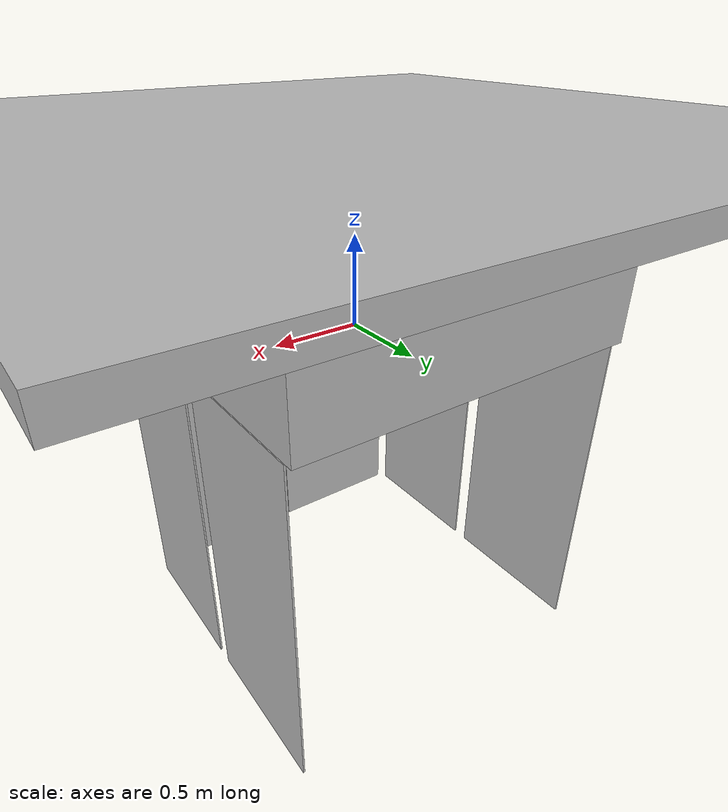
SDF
<sdf version='1.6'>
  <world name='granite'>
    <physics name='default_physics' default='0' type='ode'>
      <max_step_size>0.016</max_step_size>
      <real_time_factor>1</real_time_factor>
      <real_time_update_rate>62.5</real_time_update_rate>
    </physics>
    <scene>
      <ambient>0.3 0.3 0.3 1</ambient>
      <background>0 0 0 1</background>
      <fog>
        <density>0</density>
      </fog>
      <grid>0</grid>
      <shadows>0</shadows>
    </scene>
    <gui fullscreen='0'>
      <camera name='user_camera'>
        <pose frame=''>0 4.0 -1.0 3.14 0 -1.57</pose>
        <view_controller>orbit</view_controller>
        <projection_type>perspective</projection_type>
      </camera>
    </gui>
    <gravity>0 0 9.80665</gravity>
    <magnetic_field>0 0 0</magnetic_field>
    <atmosphere type='adiabatic'/>
    <spherical_coordinates>
      <surface_model>EARTH_WGS84</surface_model>
      <latitude_deg>0</latitude_deg>
      <longitude_deg>0</longitude_deg>
      <elevation>0</elevation>
      <heading_deg>0</heading_deg>
    </spherical_coordinates>
    <light name='user_point_light_0' type='point'>
      <pose frame=''>0 1 -1.5 0 -0 0</pose>
      <diffuse>0.5 0.5 0.5 1</diffuse>
      <specular>0.1 0.1 0.1 1</specular>
      <attenuation>
        <range>20</range>
        <constant>0.5</constant>
        <linear>0.05</linear>
        <quadratic>0.001</quadratic>
      </attenuation>
      <cast_shadows>0</cast_shadows>
      <direction>0 0 -1</direction>
    </light>
    <model name='granite_model'>
      <static>1</static>
      <pose frame=''>0 0 0 0 0 0</pose>
      <link name='body'>
        <inertial>
          <mass>0.1</mass>
          <inertia>
            <ixx>1</ixx>
            <ixy>0</ixy>
            <ixz>0</ixz>
            <iyy>1</iyy>
            <iyz>0</iyz>
            <izz>1</izz>
          </inertia>
        </inertial>
        <visual name='visual_granite_bottom'>
          <pose>0 0 0.75 0 0 0</pose>
          <geometry>
            <box>
              <size>1.5 1.5 0.5</size>
            </box>
          </geometry>
          <material>
            <script>
              <uri>file://media/materials/scripts/astrobee.material</uri>
              <name>Astrobee/GraniteTable</name>
            </script>
          </material>
        </visual>
        <collision name='collision_granite_bottom'>
          <pose>0 0 0.75 0 0 0</pose>
          <geometry>
            <box>
              <size>1.5 1.5 0.5</size>
            </box>
          </geometry>
        </collision>
        <visual name='visual_granite_top'>
          <pose>0 0 0.25 0 0 0</pose>
          <geometry>
            <box>
              <size>2.0 2.0 0.5</size>
            </box>
          </geometry>
          <material>
            <script>
              <uri>file://media/materials/scripts/astrobee.material</uri>
              <name>Astrobee/GraniteTable</name>
            </script>
          </material>
        </visual>
        <collision name='collision_granite_top'>
          <pose>0 0 0.25 0 0 0</pose>
          <geometry>
            <box>
              <size>2.0 2.0 0.5</size>
            </box>
          </geometry>
        </collision>
        <visual name='visual_floor'>
          <pose>0 0 1.0 0 0 0</pose>
          <geometry>
            <box>
              <size>20.0 20.0 0.1</size>
            </box>
          </geometry>
          <material>
            <script>
              <uri>file://media/materials/scripts/astrobee.material</uri>
              <name>Astrobee/GraniteFloor</name>
            </script>
          </material>
        </visual>
        <collision name='collision_floor'>
          <pose>0 0 1.0 0 0 0</pose>
          <geometry>
            <box>
              <size>20.0 20.0 0.1</size>
            </box>
          </geometry>
        </collision>
        <visual name='visual_wallx_pn'>
          <pose>1.0 -0.5 -1.0 0 0 0</pose>
          <geometry>
            <box>
              <size>0.01 0.9 2.0</size>
            </box>
          </geometry>
          <material>
            <script>
              <uri>file://media/materials/scripts/astrobee.material</uri>
              <name>Astrobee/GraniteWall1</name>
            </script>
          </material>
        </visual>
        <collision name='collision_wallx_pn'>
          <pose>1.0 -0.5 -1.0 0 0 0</pose>
          <geometry>
            <box>
              <size>0.01 0.9 2.0</size>
            </box>
          </geometry>
        </collision>
        <visual name='visual_wallx_pp'>
          <pose>1.0 0.5 -1.0 0 0 0</pose>
          <geometry>
            <box>
              <size>0.01 0.9 2.0</size>
            </box>
          </geometry>
          <material>
            <script>
              <uri>file://media/materials/scripts/astrobee.material</uri>
              <name>Astrobee/GraniteWall2</name>
            </script>
          </material>
        </visual>
        <collision name='collision_wallx_pp'>
          <pose>1.0 0.5 -1.0 0 0 0</pose>
          <geometry>
            <box>
              <size>0.01 0.9 2.0</size>
            </box>
          </geometry>
        </collision>
        <visual name='visual_wallx_nn'>
          <pose>-1.0 -0.5 -1.0 0 0 0</pose>
          <geometry>
            <box>
              <size>0.01 0.9 2.0</size>
            </box>
          </geometry>
          <material>
            <script>
              <uri>file://media/materials/scripts/astrobee.material</uri>
              <name>Astrobee/GraniteWall3</name>
            </script>
          </material>
        </visual>
        <collision name='collision_wallx_nn'>
          <pose>-1.0 -0.5 -1.0 0 0 0</pose>
          <geometry>
            <box>
              <size>0.01 0.9 2.0</size>
            </box>
          </geometry>
        </collision>
        <visual name='visual_wallx_np'>
          <pose>-1.0 0.5 -1.0 0 0 0</pose>
          <geometry>
            <box>
              <size>0.01 0.9 2.0</size>
            </box>
          </geometry>
          <material>
            <script>
              <uri>file://media/materials/scripts/astrobee.material</uri>
              <name>Astrobee/GraniteWall4</name>
            </script>
          </material>
        </visual>
        <collision name='collision_wallx_np'>
          <pose>-1.0 0.5 -1.0 0 0 0</pose>
          <geometry>
            <box>
              <size>0.01 0.9 2.0</size>
            </box>
          </geometry>
        </collision>
        <visual name='visual_wally_p'>
          <pose>0.5 -1.0 -1.0 0 0 0</pose>
          <geometry>
            <box>
              <size>0.9 0.01 2.0</size>
            </box>
          </geometry>
          <material>
            <script>
              <uri>file://media/materials/scripts/astrobee.material</uri>
              <name>Astrobee/GraniteWall5</name>
            </script>
          </material>
        </visual>
        <collision name='collision_wally_p'>
          <pose>0.5 -1.0 -1.0 0 0 0</pose>
          <geometry>
            <box>
              <size>0.9 0.01 2.0</size>
            </box>
          </geometry>
        </collision>
        <visual name='visual_wally_n'>
          <pose>-0.5 -1.0 -1.0 0 0 0</pose>
          <geometry>
            <box>
              <size>0.9 0.01 2.0</size>
            </box>
          </geometry>
          <material>
            <script>
              <uri>file://media/materials/scripts/astrobee.material</uri>
              <name>Astrobee/GraniteWall6</name>
            </script>
          </material>
        </visual>
        <collision name='collision_wally_n'>
          <pose>-0.5 -1.0 -1.0 0 0 0</pose>
          <geometry>
            <box>
              <size>0.9 0.01 2.0</size>
            </box>
          </geometry>
        </collision>
        <self_collide>0</self_collide>
        <kinematic>0</kinematic>
      </link>
    </model>
  </world>
</sdf>
